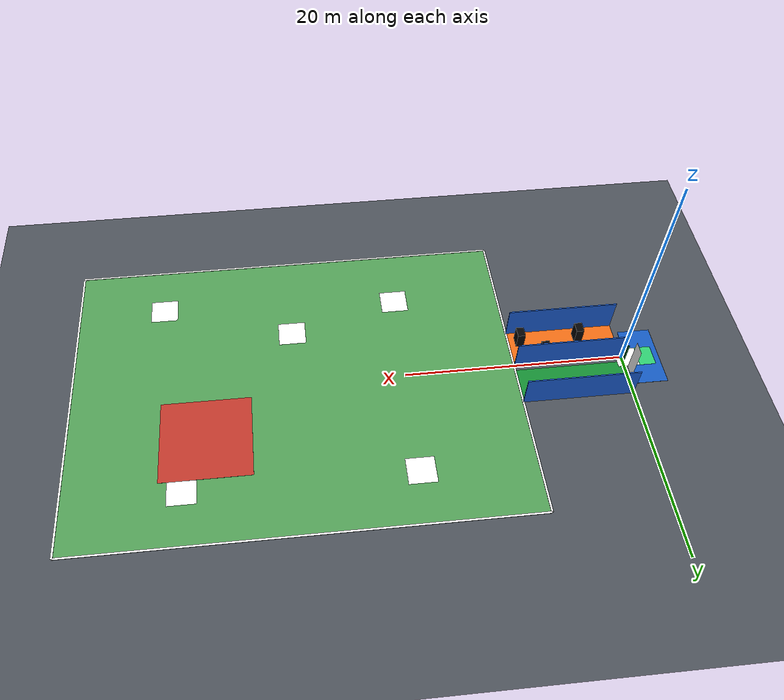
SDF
<?xml version="1.0" ?>
<sdf version="1.10">
  <world name="mission2">
    <gui fullscreen="false">
      <camera name="rulebook_course_view">
        <pose>-15 -24 27 0 0.62 0.78</pose>
        <view_controller>orbit</view_controller>
        <projection_type>perspective</projection_type>
      </camera>
    </gui>
    <physics name="1ms" type="ignored">
      <max_step_size>0.004</max_step_size>
      <real_time_factor>1.0</real_time_factor>
    </physics>

    <plugin filename="gz-sim-physics-system" name="gz::sim::systems::Physics"/>
    <plugin filename="gz-sim-user-commands-system" name="gz::sim::systems::UserCommands"/>
    <plugin filename="gz-sim-scene-broadcaster-system" name="gz::sim::systems::SceneBroadcaster"/>
    <plugin filename="gz-sim-sensors-system" name="gz::sim::systems::Sensors">
      <render_engine>ogre2</render_engine>
    </plugin>
    <plugin filename="gz-sim-imu-system" name="gz::sim::systems::Imu"/>

    <light type="directional" name="sun">
      <cast_shadows>true</cast_shadows>
      <pose>0 0 10 0 0 0</pose>
      <diffuse>1 1 1 1</diffuse>
      <specular>0.3 0.3 0.3 1</specular>
      <direction>-0.4 0.2 -0.9</direction>
    </light>

    <model name="ground">
      <static>true</static>
      <link name="link">
        <collision name="c"><geometry><plane><normal>0 0 1</normal>
          <size>200 200</size></plane></geometry></collision>
        <visual name="v"><geometry><plane><normal>0 0 1</normal>
          <size>200 200</size></plane></geometry>
          <material><ambient>0.25 0.27 0.3 1</ambient><diffuse>0.3 0.32 0.35 1</diffuse></material>
        </visual>
      </link>
    </model>

    <!-- Rulebook Figure 3: two 3.5 m-wide, 10 m-long return corridors. -->
    <model name="forward_corridor_floor"><static>true</static><pose>5 2.2 0.012 0 0 0</pose>
      <link name="l"><visual name="v"><geometry><box><size>10 3.5 0.02</size></box></geometry>
        <material><ambient>0.08 0.55 0.20 1</ambient><diffuse>0.08 0.55 0.20 1</diffuse></material></visual></link></model>
    <model name="return_corridor_floor"><static>true</static><pose>5 -2.2 0.013 0 0 0</pose>
      <link name="l"><visual name="v"><geometry><box><size>10 3.5 0.02</size></box></geometry>
        <material><ambient>0.93 0.42 0.08 1</ambient><diffuse>0.93 0.42 0.08 1</diffuse></material></visual></link></model>
    <model name="corridor_outer_north"><static>true</static><pose>5 3.95 1.5 0 0 0</pose>
      <link name="l"><collision name="c"><geometry><box><size>10 0.10 3</size></box></geometry></collision>
        <visual name="v"><geometry><box><size>10 0.10 3</size></box></geometry><material><ambient>0.1 0.35 0.8 1</ambient><diffuse>0.1 0.35 0.8 1</diffuse></material></visual></link></model>
    <model name="corridor_middle"><static>true</static><pose>5 0 1.5 0 0 0</pose>
      <link name="l"><collision name="c"><geometry><box><size>10 0.10 3</size></box></geometry></collision>
        <visual name="v"><geometry><box><size>10 0.10 3</size></box></geometry><material><ambient>0.1 0.35 0.8 1</ambient><diffuse>0.1 0.35 0.8 1</diffuse></material></visual></link></model>
    <model name="corridor_outer_south"><static>true</static><pose>5 -3.95 1.5 0 0 0</pose>
      <link name="l"><collision name="c"><geometry><box><size>10 0.10 3</size></box></geometry></collision>
        <visual name="v"><geometry><box><size>10 0.10 3</size></box></geometry><material><ambient>0.1 0.35 0.8 1</ambient><diffuse>0.1 0.35 0.8 1</diffuse></material></visual></link></model>

    <!-- Black static obstacles in the forward and return lanes. -->
    <!-- The green forward lane is clear; obstacles are placed only on the
         orange return lane as shown in the rulebook figure. -->
    <model name="static_obstacle_4"><static>true</static><pose>3.5 -2.8 0.75 0 0 0</pose><link name="l"><collision name="c"><geometry><box><size>0.7 1.0 1.5</size></box></geometry></collision><visual name="v"><geometry><box><size>0.7 1.0 1.5</size></box></geometry><material><ambient>0.02 0.02 0.02 1</ambient><diffuse>0.02 0.02 0.02 1</diffuse></material></visual></link></model>
    <model name="static_obstacle_5"><static>true</static><pose>7.0 -1.0 0.75 0 0 0</pose><link name="l"><collision name="c"><geometry><box><size>0.7 1.0 1.5</size></box></geometry></collision><visual name="v"><geometry><box><size>0.7 1.0 1.5</size></box></geometry><material><ambient>0.02 0.02 0.02 1</ambient><diffuse>0.02 0.02 0.02 1</diffuse></material></visual></link></model>
    <model name="static_obstacle_6"><static>true</static><pose>9.0 -2.8 0.75 0 0 0</pose><link name="l"><collision name="c"><geometry><box><size>0.7 1.0 1.5</size></box></geometry></collision><visual name="v"><geometry><box><size>0.7 1.0 1.5</size></box></geometry><material><ambient>0.02 0.02 0.02 1</ambient><diffuse>0.02 0.02 0.02 1</diffuse></material></visual></link></model>

    <!-- ============ Delivery zone marker (40 x 30) ============ -->
    <model name="delivery_zone"><static>true</static>
      <pose>30 0 0.01 0 0 0</pose>
      <link name="l"><visual name="v"><geometry><box><size>40 30 0.02</size></box></geometry>
        <material><ambient>0.32 0.62 0.34 1</ambient><diffuse>0.32 0.62 0.34 1</diffuse></material></visual></link>
    </model>
    <model name="delivery_border_n"><static>true</static><pose>30 15 0.035 0 0 0</pose><link name="l"><visual name="v"><geometry><box><size>40 0.18 0.03</size></box></geometry><material><ambient>1 1 1 1</ambient><diffuse>1 1 1 1</diffuse></material></visual></link></model>
    <model name="delivery_border_s"><static>true</static><pose>30 -15 0.035 0 0 0</pose><link name="l"><visual name="v"><geometry><box><size>40 0.18 0.03</size></box></geometry><material><ambient>1 1 1 1</ambient><diffuse>1 1 1 1</diffuse></material></visual></link></model>
    <model name="delivery_border_e"><static>true</static><pose>50 0 0.035 0 0 0</pose><link name="l"><visual name="v"><geometry><box><size>0.18 30 0.03</size></box></geometry><material><ambient>1 1 1 1</ambient><diffuse>1 1 1 1</diffuse></material></visual></link></model>
    <model name="delivery_border_w"><static>true</static><pose>10 0 0.035 0 0 0</pose><link name="l"><visual name="v"><geometry><box><size>0.18 30 0.03</size></box></geometry><material><ambient>1 1 1 1</ambient><diffuse>1 1 1 1</diffuse></material></visual></link></model>

    <!-- ============ Red / restricted zone (8 x 8) ============ -->
    <model name="red_zone"><static>true</static>
      <pose>38 5 0.02 0 0 0</pose>
      <link name="l"><visual name="v"><geometry><box><size>8 8 0.03</size></box></geometry>
        <material><ambient>0.75 0.22 0.17 1</ambient><diffuse>0.75 0.22 0.17 1</diffuse></material></visual></link>
    </model>

    <!-- Decodable QR boards. The start QR is 1 m ahead of the takeoff pad;
         the delivery QR boards are enlarged to 2.5 m for the 10 m scan. -->
    <model name="qr_start"><static>true</static><pose>-0.5 0 0.04 0 0 0</pose>
      <link name="l"><visual name="v"><geometry><plane><normal>0 0 1</normal><size>2.0 2.0</size></plane></geometry>
        <material><ambient>1 1 1 1</ambient><diffuse>1 1 1 1</diffuse><pbr><metal><albedo_map>@SIM_GAZEBO_ASSET_URI@/qr_start.png</albedo_map><roughness>1</roughness><metalness>0</metalness></metal></pbr></material></visual></link></model>
    <model name="qr_target"><static>true</static><pose>30 -6 0.03 0 0 0</pose>
      <link name="l"><visual name="v"><geometry><plane><normal>0 0 1</normal><size>2.5 2.5</size></plane></geometry>
        <material><ambient>1 1 1 1</ambient><diffuse>1 1 1 1</diffuse><pbr><metal><albedo_map>@SIM_GAZEBO_ASSET_URI@/qr_target_a.png</albedo_map><roughness>1</roughness><metalness>0</metalness></metal></pbr></material></visual></link></model>
    <model name="qr_3"><static>true</static><pose>40 10 0.03 0 0 0</pose>
      <link name="l"><visual name="v"><geometry><plane><normal>0 0 1</normal><size>2.5 2.5</size></plane></geometry>
        <material><ambient>1 1 1 1</ambient><diffuse>1 1 1 1</diffuse><pbr><metal><albedo_map>@SIM_GAZEBO_ASSET_URI@/qr_target_b.png</albedo_map><roughness>1</roughness><metalness>0</metalness></metal></pbr></material></visual></link></model>
    <model name="qr_4"><static>true</static><pose>42 -10 0.03 0 0 0</pose>
      <link name="l"><visual name="v"><geometry><plane><normal>0 0 1</normal><size>2.5 2.5</size></plane></geometry>
        <material><ambient>1 1 1 1</ambient><diffuse>1 1 1 1</diffuse><pbr><metal><albedo_map>@SIM_GAZEBO_ASSET_URI@/qr_target_c.png</albedo_map><roughness>1</roughness><metalness>0</metalness></metal></pbr></material></visual></link></model>
    <model name="qr_5"><static>true</static><pose>20 10 0.03 0 0 0</pose>
      <link name="l"><visual name="v"><geometry><plane><normal>0 0 1</normal><size>2.5 2.5</size></plane></geometry>
        <material><ambient>1 1 1 1</ambient><diffuse>1 1 1 1</diffuse><pbr><metal><albedo_map>@SIM_GAZEBO_ASSET_URI@/qr_target_d.png</albedo_map><roughness>1</roughness><metalness>0</metalness></metal></pbr></material></visual></link></model>
    <model name="qr_6"><static>true</static><pose>20 -9 0.03 0 0 0</pose>
      <link name="l"><visual name="v"><geometry><plane><normal>0 0 1</normal><size>2.5 2.5</size></plane></geometry>
        <material><ambient>1 1 1 1</ambient><diffuse>1 1 1 1</diffuse><pbr><metal><albedo_map>@SIM_GAZEBO_ASSET_URI@/qr_target_e.png</albedo_map><roughness>1</roughness><metalness>0</metalness></metal></pbr></material></visual></link></model>

    <!-- ============ Start / land pad ============ -->
    <model name="start_pad"><static>true</static><pose>-2 0 0.02 0 0 0</pose>
      <link name="l"><visual name="v"><geometry><box><size>2 2 0.02</size></box></geometry>
        <material><ambient>0.18 0.8 0.44 1</ambient><diffuse>0.18 0.8 0.44 1</diffuse></material></visual></link></model>
    <model name="takeoff_landing_zone"><static>true</static><pose>-2 0 0.01 0 0 0</pose>
      <link name="l"><visual name="v"><geometry><box><size>3 6 0.015</size></box></geometry>
        <material><ambient>0.08 0.35 0.75 1</ambient><diffuse>0.08 0.35 0.75 1</diffuse></material></visual></link></model>

    <!-- ============ Green corridor-entrance banner ============ -->
    <model name="green_banner"><static>true</static><pose>0 2.2 2.4 0 0 0</pose>
      <link name="l"><visual name="v"><geometry><plane><normal>-1 0 0</normal><size>3.4 1.2</size></plane></geometry>
        <material><ambient>1 1 1 1</ambient><diffuse>1 1 1 1</diffuse><pbr><metal><albedo_map>@SIM_GAZEBO_ASSET_URI@/banner.png</albedo_map><roughness>1</roughness><metalness>0</metalness></metal></pbr></material></visual>
        <visual name="left_post"><pose>0 1.65 -1.2 0 0 0</pose><geometry><box><size>0.12 0.12 2.4</size></box></geometry><material><ambient>0.05 0.45 0.16 1</ambient><diffuse>0.05 0.45 0.16 1</diffuse></material></visual>
        <visual name="right_post"><pose>0 -1.65 -1.2 0 0 0</pose><geometry><box><size>0.12 0.12 2.4</size></box></geometry><material><ambient>0.05 0.45 0.16 1</ambient><diffuse>0.05 0.45 0.16 1</diffuse></material></visual>
      </link></model>
  </world>
</sdf>
